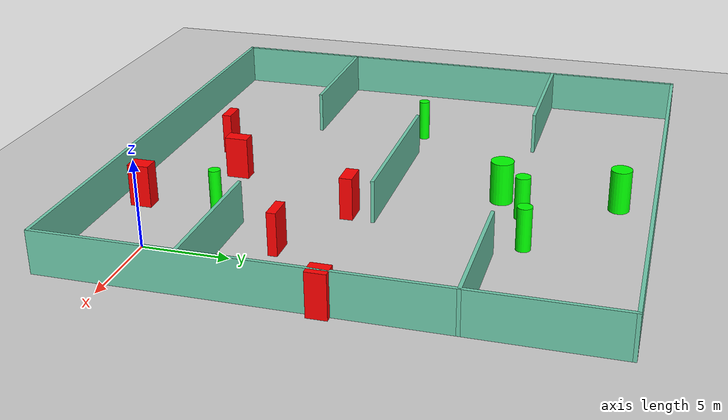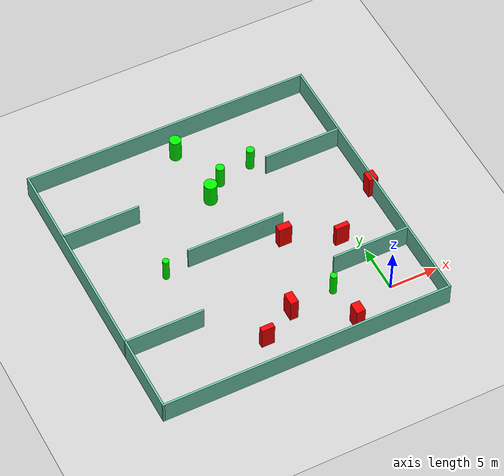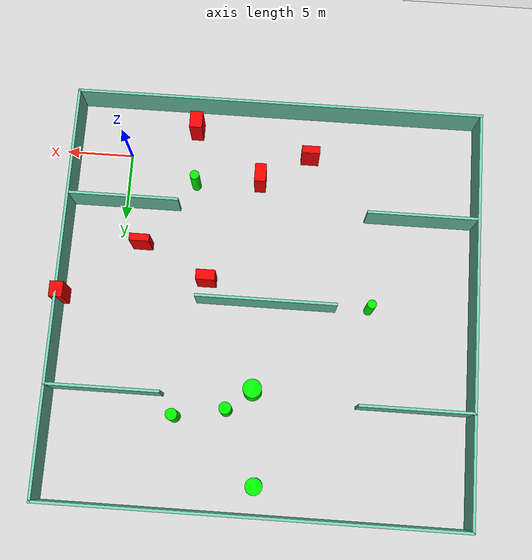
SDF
<sdf version="1.7">
 <world name="default">
  <light name="sun" type="directional">
   <pose>0 0 10 0 -0 0</pose>
   <diffuse>0.8 0.8 0.8 1</diffuse>
   <specular>0.2 0.2 0.2 1</specular>
   <attenuation>
    <range>1000</range>
    <constant>0.9</constant>
    <linear>0.01</linear>
    <quadratic>0.001</quadratic>
   </attenuation>
   <direction>-0.5 0.1 -0.9</direction>
   <spot><inner_angle>0</inner_angle><outer_angle>0</outer_angle><falloff>0</falloff></spot>
  </light>
  <model name="ground_plane">
   <static>1</static>
   <link name="link">
    <collision name="collision">
     <geometry><plane><normal>0 0 1</normal><size>100 100</size></plane></geometry>
     <surface>
      <contact><collide_bitmask>65535</collide_bitmask></contact>
      <friction><ode><mu>100</mu><mu2>50</mu2></ode></friction>
     </surface>
    </collision>
    <visual name="visual">
     <cast_shadows>0</cast_shadows>
     <geometry><plane><normal>0 0 1</normal><size>100 100</size></plane></geometry>
     <material>
      <script><uri>file://media/materials/scripts/gazebo.material</uri><name>Gazebo/Grey</name></script>
     </material>
    </visual>
   </link>
  </model>
  <gravity>0 0 -9.8</gravity>
  <magnetic_field>6e-06 2.3e-05 -4.2e-05</magnetic_field>
  <atmosphere type="adiabatic"/>
  <physics type="ode">
   <max_step_size>0.001</max_step_size>
   <real_time_factor>1</real_time_factor>
   <real_time_update_rate>1000</real_time_update_rate>
  </physics>
  <scene><ambient>0.4 0.4 0.4 1</ambient><background>0.7 0.7 0.7 1</background><shadows>1</shadows></scene>
  <spherical_coordinates>
   <surface_model>EARTH_WGS84</surface_model>
   <latitude_deg>0</latitude_deg>
   <longitude_deg>0</longitude_deg>
   <elevation>0</elevation>
   <heading_deg>0</heading_deg>
  </spherical_coordinates>
  <model name="my_base_walls">
   <link name="Wall_10">
    <collision name="Wall_10_Collision">
     <geometry><box><size>8.2 0.2 2.5</size></box></geometry>
     <pose>0 0 1.25 0 -0 0</pose>
    </collision>
    <visual name="Wall_10_Visual">
     <pose>0 0 1.25 0 -0 0</pose>
     <geometry><box><size>8.2 0.2 2.5</size></box></geometry>
     <material>
      <script><uri>file://media/materials/scripts/gazebo.material</uri><name>Gazebo/Grey</name></script>
      <ambient>0.435294 0.796078 0.67451 1</ambient>
     </material>
     <meta><layer>0</layer></meta>
    </visual>
    <pose>-11 -7 0 0 -0 0</pose>
   </link>
   <link name="Wall_12">
    <collision name="Wall_12_Collision">
     <geometry><box><size>8.2 0.2 2.5</size></box></geometry>
     <pose>0 0 1.25 0 -0 0</pose>
    </collision>
    <visual name="Wall_12_Visual">
     <pose>0 0 1.25 0 -0 0</pose>
     <geometry><box><size>8.2 0.2 2.5</size></box></geometry>
     <material>
      <script><uri>file://media/materials/scripts/gazebo.material</uri><name>Gazebo/Grey</name></script>
      <ambient>0.435294 0.796078 0.67451 1</ambient>
     </material>
     <meta><layer>0</layer></meta>
    </visual>
    <pose>-11 7 0 0 -0 0</pose>
   </link>
   <link name="Wall_14">
    <collision name="Wall_14_Collision">
     <geometry><box><size>8.2 0.2 2.5</size></box></geometry>
     <pose>0 0 1.25 0 -0 0</pose>
    </collision>
    <visual name="Wall_14_Visual">
     <pose>0 0 1.25 0 -0 0</pose>
     <geometry><box><size>8.2 0.2 2.5</size></box></geometry>
     <material>
      <script><uri>file://media/materials/scripts/gazebo.material</uri><name>Gazebo/Grey</name></script>
      <ambient>0.435294 0.796078 0.67451 1</ambient>
     </material>
     <meta><layer>0</layer></meta>
    </visual>
    <pose>11 7 0 0 -0 3.14159</pose>
   </link>
   <link name="Wall_16">
    <collision name="Wall_16_Collision">
     <geometry><box><size>10.2 0.2 2.5</size></box></geometry>
     <pose>0 0 1.25 0 -0 0</pose>
    </collision>
    <visual name="Wall_16_Visual">
     <pose>0 0 1.25 0 -0 0</pose>
     <geometry><box><size>10.2 0.2 2.5</size></box></geometry>
     <material>
      <script><uri>file://media/materials/scripts/gazebo.material</uri><name>Gazebo/Grey</name></script>
      <ambient>0.435294 0.796078 0.67451 1</ambient>
     </material>
     <meta><layer>0</layer></meta>
    </visual>
    <pose>0 0 0 0 -0 3.14159</pose>
   </link>
   <link name="Wall_2">
    <collision name="Wall_2_Collision">
     <geometry><box><size>30.2 0.2 2.5</size></box></geometry>
     <pose>0 0 1.25 0 -0 0</pose>
    </collision>
    <visual name="Wall_2_Visual">
     <pose>0 0 1.25 0 -0 0</pose>
     <geometry><box><size>30.2 0.2 2.5</size></box></geometry>
     <material>
      <script><uri>file://media/materials/scripts/gazebo.material</uri><name>Gazebo/Grey</name></script>
      <ambient>0.435294 0.796078 0.67451 1</ambient>
     </material>
     <meta><layer>0</layer></meta>
    </visual>
    <pose>0 -15 0 0 -0 3.14159</pose>
   </link>
   <link name="Wall_3">
    <collision name="Wall_3_Collision">
     <geometry><box><size>30.2 0.2 2.5</size></box></geometry>
     <pose>0 0 1.25 0 -0 0</pose>
    </collision>
    <visual name="Wall_3_Visual">
     <pose>0 0 1.25 0 -0 0</pose>
     <geometry><box><size>30.2 0.2 2.5</size></box></geometry>
     <material>
      <script><uri>file://media/materials/scripts/gazebo.material</uri><name>Gazebo/Grey</name></script>
      <ambient>0.435294 0.796078 0.67451 1</ambient>
     </material>
     <meta><layer>0</layer></meta>
    </visual>
    <pose>-15 0 0 0 -0 1.5708</pose>
   </link>
   <link name="Wall_4">
    <collision name="Wall_4_Collision">
     <geometry><box><size>30.2 0.2 2.5</size></box></geometry>
     <pose>0 0 1.25 0 -0 0</pose>
    </collision>
    <visual name="Wall_4_Visual">
     <pose>0 0 1.25 0 -0 0</pose>
     <geometry><box><size>30.2 0.2 2.5</size></box></geometry>
     <material>
      <script><uri>file://media/materials/scripts/gazebo.material</uri><name>Gazebo/Grey</name></script>
      <ambient>0.435294 0.796078 0.67451 1</ambient>
     </material>
     <meta><layer>0</layer></meta>
    </visual>
    <pose>0 15 0 0 -0 0</pose>
   </link>
   <link name="Wall_6">
    <collision name="Wall_6_Collision">
     <geometry><box><size>30.2 0.2 2.5</size></box></geometry>
     <pose>0 0 1.25 0 -0 0</pose>
    </collision>
    <visual name="Wall_6_Visual">
     <pose>0 0 1.25 0 -0 0</pose>
     <geometry><box><size>30.2 0.2 2.5</size></box></geometry>
     <material>
      <script><uri>file://media/materials/scripts/gazebo.material</uri><name>Gazebo/Grey</name></script>
      <ambient>0.435294 0.796078 0.67451 1</ambient>
     </material>
     <meta><layer>0</layer></meta>
    </visual>
    <pose>15 0 0 0 -0 1.5708</pose>
   </link>
   <link name="Wall_8">
    <collision name="Wall_8_Collision">
     <geometry><box><size>8.2 0.2 2.5</size></box></geometry>
     <pose>0 0 1.25 0 -0 0</pose>
    </collision>
    <visual name="Wall_8_Visual">
     <pose>0 0 1.25 0 -0 0</pose>
     <geometry><box><size>8.2 0.2 2.5</size></box></geometry>
     <material>
      <script><uri>file://media/materials/scripts/gazebo.material</uri><name>Gazebo/Grey</name></script>
      <ambient>0.435294 0.796078 0.67451 1</ambient>
     </material>
     <meta><layer>0</layer></meta>
    </visual>
    <pose>11 -7 0 0 -0 3.14159</pose>
   </link>
   <static>1</static>
   <pose>-11 11 0 0 -0 0</pose>
  </model>
  <model name="cylinder1">
   <static>1</static>
   <link name="link">
    <inertial>
     <mass>1</mass>
     <inertia><ixx>0.5</ixx><ixy>0</ixy><ixz>0</ixz><iyy>0.5</iyy><iyz>0</iyz><izz>1</izz></inertia>
    </inertial>
    <collision name="collision">
     <geometry><cylinder><radius>0.4374865677939987</radius><length>2.5</length></cylinder></geometry>
    </collision>
    <visual name="visual">
     <geometry><cylinder><radius>0.4374865677939987</radius><length>2.5</length></cylinder></geometry>
     <material>
      <ambient>0 1 0 1</ambient>
      <diffuse>0 1 0 1</diffuse>
      <specular>0.1 0.1 0.1 1</specular>
      <emissive>0 0 0 0</emissive>
     </material>
    </visual>
   </link>
   <pose>-8.703215162748059 18.82523359016397 1.25 0 0 0</pose>
  </model>
  <model name="cylinder2">
   <static>1</static>
   <link name="link">
    <inertial>
     <mass>1</mass>
     <inertia><ixx>0.5</ixx><ixy>0</ixy><ixz>0</ixz><iyy>0.5</iyy><iyz>0</iyz><izz>1</izz></inertia>
    </inertial>
    <collision name="collision">
     <geometry><cylinder><radius>0.6029258601089162</radius><length>2.5</length></cylinder></geometry>
    </collision>
    <visual name="visual">
     <geometry><cylinder><radius>0.6029258601089162</radius><length>2.5</length></cylinder></geometry>
     <material>
      <ambient>0 1 0 1</ambient>
      <diffuse>0 1 0 1</diffuse>
      <specular>0.1 0.1 0.1 1</specular>
      <emissive>0 0 0 0</emissive>
     </material>
    </visual>
   </link>
   <pose>-11.058398244327162 23.972383260384298 1.25 0 0 0</pose>
  </model>
  <model name="cylinder3">
   <static>1</static>
   <link name="link">
    <inertial>
     <mass>1</mass>
     <inertia><ixx>0.5</ixx><ixy>0</ixy><ixz>0</ixz><iyy>0.5</iyy><iyz>0</iyz><izz>1</izz></inertia>
    </inertial>
    <collision name="collision">
     <geometry><cylinder><radius>0.3440665233078595</radius><length>2.5</length></cylinder></geometry>
    </collision>
    <visual name="visual">
     <geometry><cylinder><radius>0.3440665233078595</radius><length>2.5</length></cylinder></geometry>
     <material>
      <ambient>0 1 0 1</ambient>
      <diffuse>0 1 0 1</diffuse>
      <specular>0.1 0.1 0.1 1</specular>
      <emissive>0 0 0 0</emissive>
     </material>
    </visual>
   </link>
   <pose>-5.1327187662518945 2.0672854270131005 1.25 0 0 0</pose>
  </model>
  <model name="cylinder4">
   <static>1</static>
   <link name="link">
    <inertial>
     <mass>1</mass>
     <inertia><ixx>0.5</ixx><ixy>0</ixy><ixz>0</ixz><iyy>0.5</iyy><iyz>0</iyz><izz>1</izz></inertia>
    </inertial>
    <collision name="collision">
     <geometry><cylinder><radius>0.32710490633845685</radius><length>2.5</length></cylinder></geometry>
    </collision>
    <visual name="visual">
     <geometry><cylinder><radius>0.32710490633845685</radius><length>2.5</length></cylinder></geometry>
     <material>
      <ambient>0 1 0 1</ambient>
      <diffuse>0 1 0 1</diffuse>
      <specular>0.1 0.1 0.1 1</specular>
      <emissive>0 0 0 0</emissive>
     </material>
    </visual>
   </link>
   <pose>-18.515569861962405 10.820475522506793 1.25 0 0 0</pose>
  </model>
  <model name="cylinder5">
   <static>1</static>
   <link name="link">
    <inertial>
     <mass>1</mass>
     <inertia><ixx>0.5</ixx><ixy>0</ixy><ixz>0</ixz><iyy>0.5</iyy><iyz>0</iyz><izz>1</izz></inertia>
    </inertial>
    <collision name="collision">
     <geometry><cylinder><radius>0.4186081337533869</radius><length>2.5</length></cylinder></geometry>
    </collision>
    <visual name="visual">
     <geometry><cylinder><radius>0.4186081337533869</radius><length>2.5</length></cylinder></geometry>
     <material>
      <ambient>0 1 0 1</ambient>
      <diffuse>0 1 0 1</diffuse>
      <specular>0.1 0.1 0.1 1</specular>
      <emissive>0 0 0 0</emissive>
     </material>
    </visual>
   </link>
   <pose>-5.038824327029467 19.509023957718046 1.25 0 0 0</pose>
  </model>
  <model name="cylinder6">
   <static>1</static>
   <link name="link">
    <inertial>
     <mass>1</mass>
     <inertia><ixx>0.5</ixx><ixy>0</ixy><ixz>0</ixz><iyy>0.5</iyy><iyz>0</iyz><izz>1</izz></inertia>
    </inertial>
    <collision name="collision">
     <geometry><cylinder><radius>0.666271287727971</radius><length>2.5</length></cylinder></geometry>
    </collision>
    <visual name="visual">
     <geometry><cylinder><radius>0.666271287727971</radius><length>2.5</length></cylinder></geometry>
     <material>
      <ambient>0 1 0 1</ambient>
      <diffuse>0 1 0 1</diffuse>
      <specular>0.1 0.1 0.1 1</specular>
      <emissive>0 0 0 0</emissive>
     </material>
    </visual>
   </link>
   <pose>-10.489410048975222 17.35196406397726 1.25 0 0 0</pose>
  </model>
  <model name="box1">
   <static>1</static>
   <link name="link">
    <inertial>
     <mass>1</mass>
     <inertia><ixx>0.083</ixx><ixy>0</ixy><ixz>0</ixz><iyy>0.083</iyy><iyz>0</iyz><izz>0.083</izz></inertia>
    </inertial>
    <collision name="collision">
     <geometry><box><size>0.9325506300988822 1.2560571545150077 2.5</size></box></geometry>
    </collision>
    <visual name="visual">
     <geometry><box><size>0.9325506300988822 1.2560571545150077 2.5</size></box></geometry>
     <material>
      <ambient>1 0 0 1</ambient>
      <diffuse>1 0 0 1</diffuse>
      <specular>0.1 0.1 0.1 1</specular>
      <emissive>0 0 0 0</emissive>
     </material>
    </visual>
    <sensor name="my_contact" type="contact">
     <contact><collision>box_collision</collision><topic>__default_topic__</topic></contact>
    </sensor>
   </link>
   <pose>-4.883897796955942 -2.2794442357888594 1.25 0 0 0</pose>
  </model>
  <model name="box2">
   <static>1</static>
   <link name="link">
    <inertial>
     <mass>1</mass>
     <inertia><ixx>0.083</ixx><ixy>0</ixy><ixz>0</ixz><iyy>0.083</iyy><iyz>0</iyz><izz>0.083</izz></inertia>
    </inertial>
    <collision name="collision">
     <geometry><box><size>1.3366819175670441 0.5559069932563054 2.5</size></box></geometry>
    </collision>
    <visual name="visual">
     <geometry><box><size>1.3366819175670441 0.5559069932563054 2.5</size></box></geometry>
     <material>
      <ambient>1 0 0 1</ambient>
      <diffuse>1 0 0 1</diffuse>
      <specular>0.1 0.1 0.1 1</specular>
      <emissive>0 0 0 0</emissive>
     </material>
    </visual>
    <sensor name="my_contact" type="contact">
     <contact><collision>box_collision</collision><topic>__default_topic__</topic></contact>
    </sensor>
   </link>
   <pose>-13.53499475551153 -0.48847397847447116 1.25 0 0 0</pose>
  </model>
  <model name="box3">
   <static>1</static>
   <link name="link">
    <inertial>
     <mass>1</mass>
     <inertia><ixx>0.083</ixx><ixy>0</ixy><ixz>0</ixz><iyy>0.083</iyy><iyz>0</iyz><izz>0.083</izz></inertia>
    </inertial>
    <collision name="collision">
     <geometry><box><size>1.3774270545184906 0.7427306669104521 2.5</size></box></geometry>
    </collision>
    <visual name="visual">
     <geometry><box><size>1.3774270545184906 0.7427306669104521 2.5</size></box></geometry>
     <material>
      <ambient>1 0 0 1</ambient>
      <diffuse>1 0 0 1</diffuse>
      <specular>0.1 0.1 0.1 1</specular>
      <emissive>0 0 0 0</emissive>
     </material>
    </visual>
    <sensor name="my_contact" type="contact">
     <contact><collision>box_collision</collision><topic>__default_topic__</topic></contact>
    </sensor>
   </link>
   <pose>-6.549898995457696 9.481342092338304 1.25 0 0 0</pose>
  </model>
  <model name="box4">
   <static>1</static>
   <link name="link">
    <inertial>
     <mass>1</mass>
     <inertia><ixx>0.083</ixx><ixy>0</ixy><ixz>0</ixz><iyy>0.083</iyy><iyz>0</iyz><izz>0.083</izz></inertia>
    </inertial>
    <collision name="collision">
     <geometry><box><size>0.9711667240623699 1.1255546285183482 2.5</size></box></geometry>
    </collision>
    <visual name="visual">
     <geometry><box><size>0.9711667240623699 1.1255546285183482 2.5</size></box></geometry>
     <material>
      <ambient>1 0 0 1</ambient>
      <diffuse>1 0 0 1</diffuse>
      <specular>0.1 0.1 0.1 1</specular>
      <emissive>0 0 0 0</emissive>
     </material>
    </visual>
    <sensor name="my_contact" type="contact">
     <contact><collision>box_collision</collision><topic>__default_topic__</topic></contact>
    </sensor>
   </link>
   <pose>3.9530558428996194 11.255592954848604 1.25 0 0 0</pose>
  </model>
  <model name="box5">
   <static>1</static>
   <link name="link">
    <inertial>
     <mass>1</mass>
     <inertia><ixx>0.083</ixx><ixy>0</ixy><ixz>0</ixz><iyy>0.083</iyy><iyz>0</iyz><izz>0.083</izz></inertia>
    </inertial>
    <collision name="collision">
     <geometry><box><size>1.4482862173203106 0.5253675564056345 2.5</size></box></geometry>
    </collision>
    <visual name="visual">
     <geometry><box><size>1.4482862173203106 0.5253675564056345 2.5</size></box></geometry>
     <material>
      <ambient>1 0 0 1</ambient>
      <diffuse>1 0 0 1</diffuse>
      <specular>0.1 0.1 0.1 1</specular>
      <emissive>0 0 0 0</emissive>
     </material>
    </visual>
    <sensor name="my_contact" type="contact">
     <contact><collision>box_collision</collision><topic>__default_topic__</topic></contact>
    </sensor>
   </link>
   <pose>-1.569454255941487 7.052347634014895 1.25 0 0 0</pose>
  </model>
  <model name="box6">
   <static>1</static>
   <link name="link">
    <inertial>
     <mass>1</mass>
     <inertia><ixx>0.083</ixx><ixy>0</ixy><ixz>0</ixz><iyy>0.083</iyy><iyz>0</iyz><izz>0.083</izz></inertia>
    </inertial>
    <collision name="collision">
     <geometry><box><size>0.8373900922312887 1.3678772230963951 2.5</size></box></geometry>
    </collision>
    <visual name="visual">
     <geometry><box><size>0.8373900922312887 1.3678772230963951 2.5</size></box></geometry>
     <material>
      <ambient>1 0 0 1</ambient>
      <diffuse>1 0 0 1</diffuse>
      <specular>0.1 0.1 0.1 1</specular>
      <emissive>0 0 0 0</emissive>
     </material>
    </visual>
    <sensor name="my_contact" type="contact">
     <contact><collision>box_collision</collision><topic>__default_topic__</topic></contact>
    </sensor>
   </link>
   <pose>-9.941328245702561 1.5278923534462354 1.25 0 0 0</pose>
  </model>
 </world>
</sdf>
